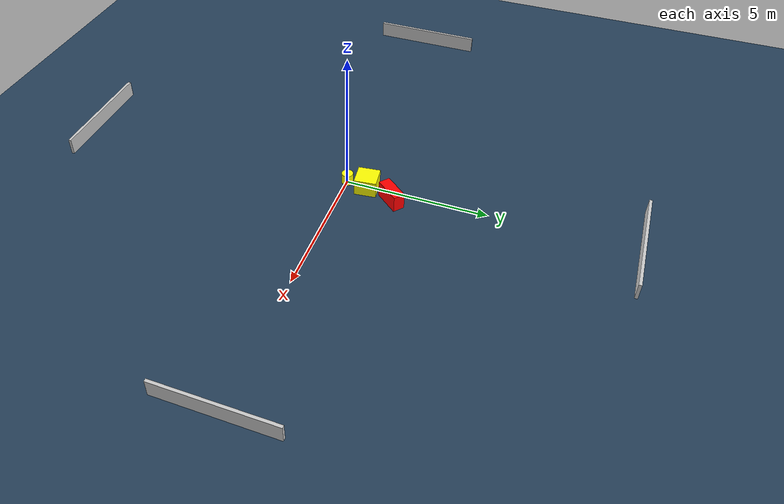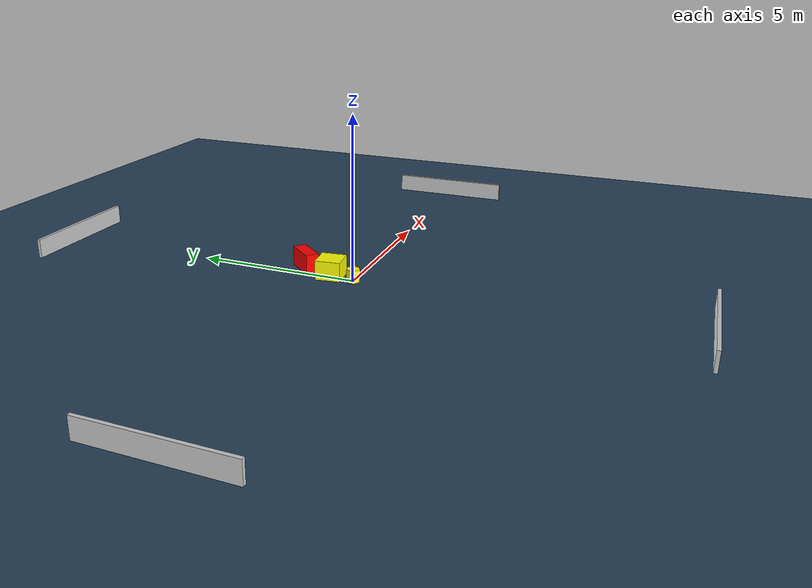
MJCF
<?xml version="1.0" ?>
<mujoco model="generated_environment">
  <option timestep="0.01" integrator="RK4" cone="elliptic"/>
  <default>
    <geom density="1"/>
  </default>
  <asset>
    <texture builtin="gradient" height="3072" name="skybox" rgb1="0.3 0.5 0.7" rgb2="0 0 0" type="skybox" width="512"/>
    <texture builtin="checker" height="300" name="groundplane" rgb1="0.2 0.3 0.4" rgb2="0.1 0.2 0.3" type="2d" width="300"/>
    <material name="groundplane" reflectance="0.2" texrepeat="5 5" texture="groundplane"/>
  </asset>
  <worldbody>
    <light dir="0 0 -1" directional="true" pos="0 0 1.5"/>
    <geom condim="3" friction="0.5 0.005 0.001" material="groundplane" name="floor" pos="0 0 0" size="0 0 0.05" type="plane"/>
    <body name="walls">
      <geom name="wall_1" condim="4" pos="-10.0 0.0 0.3" rgba="0.800000011920929 0.800000011920929 0.800000011920929 1.0" size="0.05 2.0 0.3" type="box"/>
      <geom name="wall_2" condim="4" pos="10.0 0.0 0.3" rgba="0.800000011920929 0.800000011920929 0.800000011920929 1.0" size="0.05 2.0 0.3" type="box"/>
      <geom name="wall_3" condim="4" pos="0.0 -10.0 0.3" rgba="0.800000011920929 0.800000011920929 0.800000011920929 1.0" size="2.0 0.05 0.3" type="box"/>
      <geom name="wall_4" condim="4" pos="0.0 10.0 0.3" rgba="0.800000011920929 0.800000011920929 0.800000011920929 1.0" size="2.0 0.05 0.3" type="box"/>
    </body>
    <body name="robot">
      <joint name="joint_x" type="slide" pos="0 0 0" axis="1 0 0"/>
      <joint name="joint_y" type="slide" pos="0 0 0" axis="0 1 0"/>
      <geom name="robot" type="cylinder" pos="0.0 0.0 0.2" size="0.2 0.2 0.0" mass="5.0" friction="1.0 0.005 0.0001" condim="4" rgba="1.0 1.0 0.0 1.0"/>
    </body>
    <body name="obstacle_1_movable">
      <geom name="obstacle_1_movable" condim="4" pos="0.09852983422361185 0.7627456644089169 0.3" euler="0 0 6.583105074122444" friction="0.0 0.005 0.001" rgba="1.0 1.0 0.0 1.0" size="0.3794841761298372 0.3849167362511542 0.3" type="box" mass="0.1"/>
      <joint type="free"/>
    </body>
    <body name="obstacle_2_static">
      <geom name="obstacle_2_static" condim="4" pos="0.43076750291849913 1.752049220980505 0.3" euler="0 0 229.97597216122665" friction="0.0 0.005 0.001" rgba="1.0 0.0 0.0 1.0" size="0.4825091365582614 0.20579333148691617 0.3" type="box"/>
    </body>
  </worldbody>
  <actuator>
    <motor name="actuator_x" joint="joint_x" gear="1" ctrlrange="-1 1"/>
    <motor name="actuator_y" joint="joint_y" gear="1" ctrlrange="-1 1"/>
  </actuator>
</mujoco>
